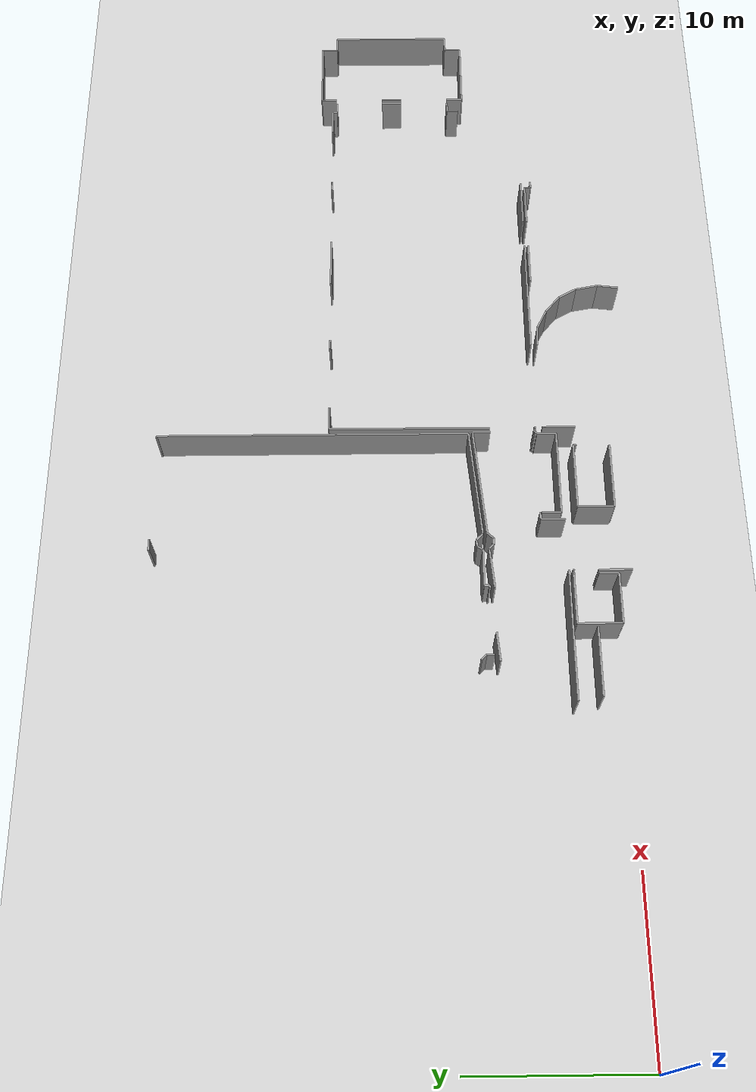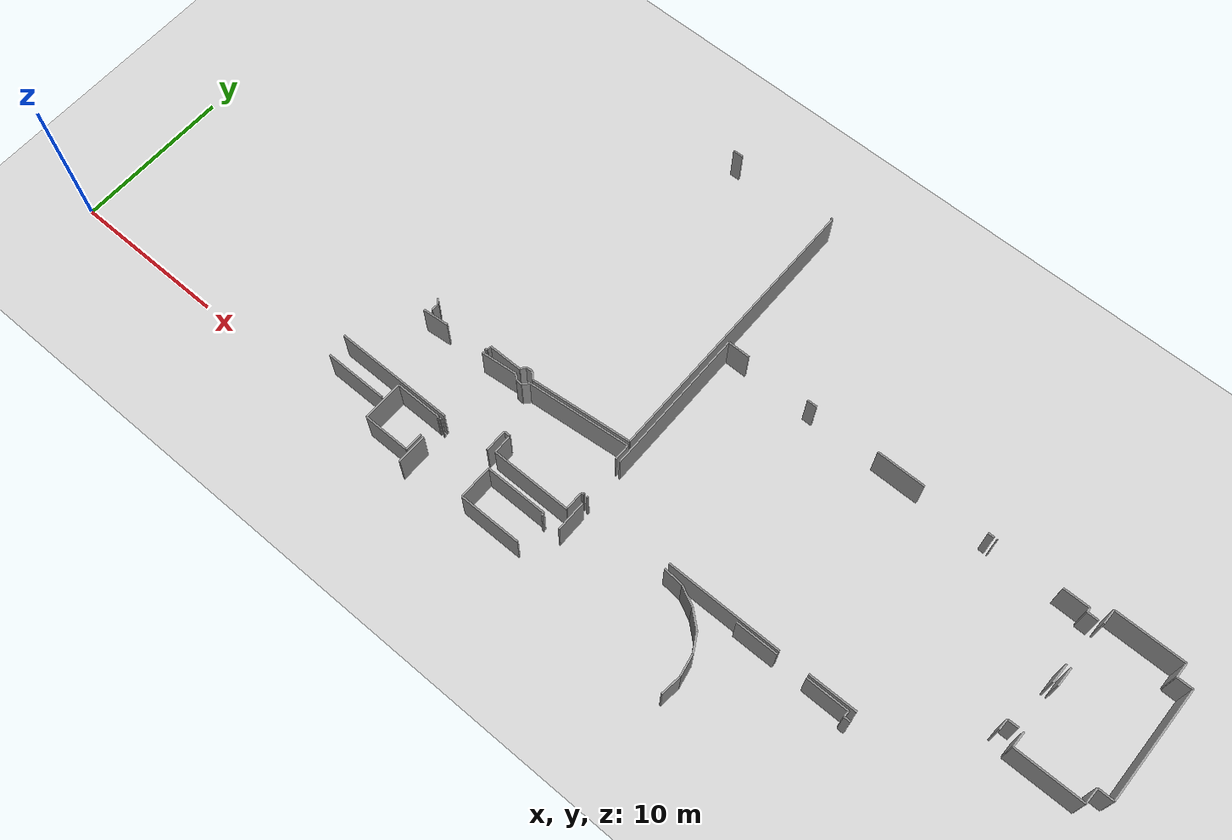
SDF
<sdf version="1.6">
 <world name="default">
  <model name="ground_plane">
   <static>1</static>
   <link name="link">
    <collision name="collision">
     <geometry><plane><normal>0 0 1</normal><size>100 100</size></plane></geometry>
     <surface><friction><ode><mu>100</mu><mu2>50</mu2></ode></friction></surface>
    </collision>
    <visual name="visual">
     <cast_shadows>0</cast_shadows>
     <geometry><plane><normal>0 0 1</normal><size>100 100</size></plane></geometry>
     <material>
      <script><uri>file://media/materials/scripts/gazebo.material</uri><name>Gazebo/Grey</name></script>
     </material>
    </visual>
   </link>
  </model>
  <model name="50041170">
   <static>1</static>
   <link name="Wall_83">
    <collision name="Wall_83_Collision">
     <geometry><box><size>2.32853490371 0.1 2.5</size></box></geometry>
     <pose>1.16426745185 0 1.25 0 0 0</pose>
    </collision>
    <visual name="Wall_83_Visual">
     <pose>1.16426745185 0 1.25 0 0 0</pose>
     <geometry><box><size>2.32853490371 0.1 2.5</size></box></geometry>
     <material>
      <script><uri>file://media/materials/scripts/gazebo.material</uri><name>Gazebo/Grey</name></script>
      <ambient>1 1 1 1</ambient>
     </material>
    </visual>
    <pose>91.6279394497 -19.618292025 0 0 0 0.0949439535834</pose>
   </link>
   <link name="Wall_84">
    <collision name="Wall_84_Collision">
     <geometry><box><size>0.390588830977 0.1 2.5</size></box></geometry>
     <pose>0.195294415488 0 1.25 0 0 0</pose>
    </collision>
    <visual name="Wall_84_Visual">
     <pose>0.195294415488 0 1.25 0 0 0</pose>
     <geometry><box><size>0.390588830977 0.1 2.5</size></box></geometry>
     <material>
      <script><uri>file://media/materials/scripts/gazebo.material</uri><name>Gazebo/Grey</name></script>
      <ambient>1 1 1 1</ambient>
     </material>
    </visual>
    <pose>93.9459871156 -19.3975437149 0 0 0 -0.745401106415</pose>
   </link>
   <link name="Wall_85">
    <collision name="Wall_85_Collision">
     <geometry><box><size>0.375396528231 0.1 2.5</size></box></geometry>
     <pose>0.187698264115 0 1.25 0 0 0</pose>
    </collision>
    <visual name="Wall_85_Visual">
     <pose>0.187698264115 0 1.25 0 0 0</pose>
     <geometry><box><size>0.375396528231 0.1 2.5</size></box></geometry>
     <material>
      <script><uri>file://media/materials/scripts/gazebo.material</uri><name>Gazebo/Grey</name></script>
      <ambient>1 1 1 1</ambient>
     </material>
    </visual>
    <pose>94.2329980007 -19.662467075 0 0 0 -0.0294231706984</pose>
   </link>
   <link name="Wall_86">
    <collision name="Wall_86_Collision">
     <geometry><box><size>0.476752711838 0.1 2.5</size></box></geometry>
     <pose>0.238376355919 0 1.25 0 0 0</pose>
    </collision>
    <visual name="Wall_86_Visual">
     <pose>0.238376355919 0 1.25 0 0 0</pose>
     <geometry><box><size>0.476752711838 0.1 2.5</size></box></geometry>
     <material>
      <script><uri>file://media/materials/scripts/gazebo.material</uri><name>Gazebo/Grey</name></script>
      <ambient>1 1 1 1</ambient>
     </material>
    </visual>
    <pose>94.608232046 -19.6735108375 0 0 0 0.834557394182</pose>
   </link>
   <link name="Wall_87">
    <collision name="Wall_87_Collision">
     <geometry><box><size>6.57582596534 0.1 2.5</size></box></geometry>
     <pose>3.28791298267 0 1.25 0 0 0</pose>
    </collision>
    <visual name="Wall_87_Visual">
     <pose>3.28791298267 0 1.25 0 0 0</pose>
     <geometry><box><size>6.57582596534 0.1 2.5</size></box></geometry>
     <material>
      <script><uri>file://media/materials/scripts/gazebo.material</uri><name>Gazebo/Grey</name></script>
      <ambient>1 1 1 1</ambient>
     </material>
    </visual>
    <pose>94.9283742185 -19.3202373774 0 0 0 0.0958366059863</pose>
   </link>
   <link name="Wall_88">
    <collision name="Wall_88_Collision">
     <geometry><box><size>1.04864967789 0.1 2.5</size></box></geometry>
     <pose>0.524324838945 0 1.25 0 0 0</pose>
    </collision>
    <visual name="Wall_88_Visual">
     <pose>0.524324838945 0 1.25 0 0 0</pose>
     <geometry><box><size>1.04864967789 0.1 2.5</size></box></geometry>
     <material>
      <script><uri>file://media/materials/scripts/gazebo.material</uri><name>Gazebo/Grey</name></script>
      <ambient>1 1 1 1</ambient>
     </material>
    </visual>
    <pose>101.474024944 -18.6909967948 0 0 0 -1.57079632679</pose>
   </link>
   <link name="Wall_89">
    <collision name="Wall_89_Collision">
     <geometry><box><size>0.105486972803 0.1 2.5</size></box></geometry>
     <pose>0.0527434864016 0 1.25 0 0 0</pose>
    </collision>
    <visual name="Wall_89_Visual">
     <pose>0.0527434864016 0 1.25 0 0 0</pose>
     <geometry><box><size>0.105486972803 0.1 2.5</size></box></geometry>
     <material>
      <script><uri>file://media/materials/scripts/gazebo.material</uri><name>Gazebo/Grey</name></script>
      <ambient>1 1 1 1</ambient>
     </material>
    </visual>
    <pose>101.474024944 -22.323633017 0 0 0 -1.57079632679</pose>
   </link>
   <link name="Wall_90">
    <collision name="Wall_90_Collision">
     <geometry><box><size>0.143441972644 0.1 2.5</size></box></geometry>
     <pose>0.0717209863222 0 1.25 0 0 0</pose>
    </collision>
    <visual name="Wall_90_Visual">
     <pose>0.0717209863222 0 1.25 0 0 0</pose>
     <geometry><box><size>0.143441972644 0.1 2.5</size></box></geometry>
     <material>
      <script><uri>file://media/materials/scripts/gazebo.material</uri><name>Gazebo/Grey</name></script>
      <ambient>1 1 1 1</ambient>
     </material>
    </visual>
    <pose>101.474024944 -22.4291199898 0 0 0 3.14159265359</pose>
   </link>
   <link name="Wall_91">
    <collision name="Wall_91_Collision">
     <geometry><box><size>0.408873091936 0.1 2.5</size></box></geometry>
     <pose>0.204436545968 0 1.25 0 0 0</pose>
    </collision>
    <visual name="Wall_91_Visual">
     <pose>0.204436545968 0 1.25 0 0 0</pose>
     <geometry><box><size>0.408873091936 0.1 2.5</size></box></geometry>
     <material>
      <script><uri>file://media/materials/scripts/gazebo.material</uri><name>Gazebo/Grey</name></script>
      <ambient>1 1 1 1</ambient>
     </material>
    </visual>
    <pose>96.1970105677 -22.4291199898 0 0 0 3.14159265359</pose>
   </link>
   <link name="Wall_92">
    <collision name="Wall_92_Collision">
     <geometry><box><size>1.42642251912 0.1 2.5</size></box></geometry>
     <pose>0.71321125956 0 1.25 0 0 0</pose>
    </collision>
    <visual name="Wall_92_Visual">
     <pose>0.71321125956 0 1.25 0 0 0</pose>
     <geometry><box><size>1.42642251912 0.1 2.5</size></box></geometry>
     <material>
      <script><uri>file://media/materials/scripts/gazebo.material</uri><name>Gazebo/Grey</name></script>
      <ambient>1 1 1 1</ambient>
     </material>
    </visual>
    <pose>95.7881374758 -22.4291199898 0 0 0 -1.57079632679</pose>
   </link>
   <link name="Wall_93">
    <collision name="Wall_93_Collision">
     <geometry><box><size>7.64951921551 0.1 2.5</size></box></geometry>
     <pose>3.82475960776 0 1.25 0 0 0</pose>
    </collision>
    <visual name="Wall_93_Visual">
     <pose>3.82475960776 0 1.25 0 0 0</pose>
     <geometry><box><size>7.64951921551 0.1 2.5</size></box></geometry>
     <material>
      <script><uri>file://media/materials/scripts/gazebo.material</uri><name>Gazebo/Grey</name></script>
      <ambient>1 1 1 1</ambient>
     </material>
    </visual>
    <pose>92.6324140776 -23.855542509 0 0 0 3.14159265359</pose>
   </link>
   <link name="Wall_157">
    <collision name="Wall_157_Collision">
     <geometry><box><size>6.5106853813 0.1 2.5</size></box></geometry>
     <pose>3.25534269065 0 1.25 0 0 0</pose>
    </collision>
    <visual name="Wall_157_Visual">
     <pose>3.25534269065 0 1.25 0 0 0</pose>
     <geometry><box><size>6.5106853813 0.1 2.5</size></box></geometry>
     <material>
      <script><uri>file://media/materials/scripts/gazebo.material</uri><name>Gazebo/Grey</name></script>
      <ambient>1 1 1 1</ambient>
     </material>
    </visual>
    <pose>101.381358891 -18.4570467456 0 0 0 -3.04736001651</pose>
   </link>
   <link name="Wall_158">
    <collision name="Wall_158_Collision">
     <geometry><box><size>0.542868434847 0.1 2.5</size></box></geometry>
     <pose>0.271434217424 0 1.25 0 0 0</pose>
    </collision>
    <visual name="Wall_158_Visual">
     <pose>0.271434217424 0 1.25 0 0 0</pose>
     <geometry><box><size>0.542868434847 0.1 2.5</size></box></geometry>
     <material>
      <script><uri>file://media/materials/scripts/gazebo.material</uri><name>Gazebo/Grey</name></script>
      <ambient>1 1 1 1</ambient>
     </material>
    </visual>
    <pose>94.8995588842 -19.0696582146 0 0 0 2.35619449019</pose>
   </link>
   <link name="Wall_159">
    <collision name="Wall_159_Collision">
     <geometry><box><size>0.404979340821 0.1 2.5</size></box></geometry>
     <pose>0.20248967041 0 1.25 0 0 0</pose>
    </collision>
    <visual name="Wall_159_Visual">
     <pose>0.20248967041 0 1.25 0 0 0</pose>
     <geometry><box><size>0.404979340821 0.1 2.5</size></box></geometry>
     <material>
      <script><uri>file://media/materials/scripts/gazebo.material</uri><name>Gazebo/Grey</name></script>
      <ambient>1 1 1 1</ambient>
     </material>
    </visual>
    <pose>94.5156929326 -18.685792263 0 0 0 -3.04678953566</pose>
   </link>
   <link name="Wall_160">
    <collision name="Wall_160_Collision">
     <geometry><box><size>0.375530750644 0.1 2.5</size></box></geometry>
     <pose>0.187765375322 0 1.25 0 0 0</pose>
    </collision>
    <visual name="Wall_160_Visual">
     <pose>0.187765375322 0 1.25 0 0 0</pose>
     <geometry><box><size>0.375530750644 0.1 2.5</size></box></geometry>
     <material>
      <script><uri>file://media/materials/scripts/gazebo.material</uri><name>Gazebo/Grey</name></script>
      <ambient>1 1 1 1</ambient>
     </material>
    </visual>
    <pose>94.1125321316 -18.7241280823 0 0 0 -2.13742184215</pose>
   </link>
   <link name="Wall_161">
    <collision name="Wall_161_Collision">
     <geometry><box><size>2.16929567412 0.1 2.5</size></box></geometry>
     <pose>1.08464783706 0 1.25 0 0 0</pose>
    </collision>
    <visual name="Wall_161_Visual">
     <pose>1.08464783706 0 1.25 0 0 0</pose>
     <geometry><box><size>2.16929567412 0.1 2.5</size></box></geometry>
     <material>
      <script><uri>file://media/materials/scripts/gazebo.material</uri><name>Gazebo/Grey</name></script>
      <ambient>1 1 1 1</ambient>
     </material>
    </visual>
    <pose>93.9109517311 -19.0409698201 0 0 0 3.13714537763</pose>
   </link>
   <link name="Wall_162">
    <collision name="Wall_162_Collision">
     <geometry><box><size>0.297546888388 0.1 2.5</size></box></geometry>
     <pose>0.148773444194 0 1.25 0 0 0</pose>
    </collision>
    <visual name="Wall_162_Visual">
     <pose>0.148773444194 0 1.25 0 0 0</pose>
     <geometry><box><size>0.297546888388 0.1 2.5</size></box></geometry>
     <material>
      <script><uri>file://media/materials/scripts/gazebo.material</uri><name>Gazebo/Grey</name></script>
      <ambient>1 1 1 1</ambient>
     </material>
    </visual>
    <pose>91.7416775094 -19.0313223954 0 0 0 -1.57079632679</pose>
   </link>
   <link name="Wall_163">
    <collision name="Wall_163_Collision">
     <geometry><box><size>0.154788550155 0.1 2.5</size></box></geometry>
     <pose>0.0773942750773 0 1.25 0 0 0</pose>
    </collision>
    <visual name="Wall_163_Visual">
     <pose>0.0773942750773 0 1.25 0 0 0</pose>
     <geometry><box><size>0.154788550155 0.1 2.5</size></box></geometry>
     <material>
      <script><uri>file://media/materials/scripts/gazebo.material</uri><name>Gazebo/Grey</name></script>
      <ambient>1 1 1 1</ambient>
     </material>
    </visual>
    <pose>91.7416775094 -19.3288692837 0 0 0 -3.01744109714</pose>
   </link>
   <link name="Wall_164">
    <collision name="Wall_164_Collision">
     <geometry><box><size>1.67399017035 0.1 2.5</size></box></geometry>
     <pose>0.836995085173 0 1.25 0 0 0</pose>
    </collision>
    <visual name="Wall_164_Visual">
     <pose>0.836995085173 0 1.25 0 0 0</pose>
     <geometry><box><size>1.67399017035 0.1 2.5</size></box></geometry>
     <material>
      <script><uri>file://media/materials/scripts/gazebo.material</uri><name>Gazebo/Grey</name></script>
      <ambient>1 1 1 1</ambient>
     </material>
    </visual>
    <pose>88.9567452636 -19.5962045 0 0 0 -3.04917522656</pose>
   </link>
   <link name="Wall_167">
    <collision name="Wall_167_Collision">
     <geometry><box><size>0.464110028397 0.1 2.5</size></box></geometry>
     <pose>0.232055014199 0 1.25 0 0 0</pose>
    </collision>
    <visual name="Wall_167_Visual">
     <pose>0.232055014199 0 1.25 0 0 0</pose>
     <geometry><box><size>0.464110028397 0.1 2.5</size></box></geometry>
     <material>
      <script><uri>file://media/materials/scripts/gazebo.material</uri><name>Gazebo/Grey</name></script>
      <ambient>1 1 1 1</ambient>
     </material>
    </visual>
    <pose>87.6542159881 -19.4636793501 0 0 0 1.52318720421</pose>
   </link>
   <link name="Wall_168">
    <collision name="Wall_168_Collision">
     <geometry><box><size>0.429393060097 0.1 2.5</size></box></geometry>
     <pose>0.214696530048 0 1.25 0 0 0</pose>
    </collision>
    <visual name="Wall_168_Visual">
     <pose>0.214696530048 0 1.25 0 0 0</pose>
     <geometry><box><size>0.429393060097 0.1 2.5</size></box></geometry>
     <material>
      <script><uri>file://media/materials/scripts/gazebo.material</uri><name>Gazebo/Grey</name></script>
      <ambient>1 1 1 1</ambient>
     </material>
    </visual>
    <pose>87.6763035131 -19.0000952048 0 0 0 2.37438190544</pose>
   </link>
   <link name="Wall_171">
    <collision name="Wall_171_Collision">
     <geometry><box><size>0.653105264828 0.1 2.5</size></box></geometry>
     <pose>0.326552632414 0 1.25 0 0 0</pose>
    </collision>
    <visual name="Wall_171_Visual">
     <pose>0.326552632414 0 1.25 0 0 0</pose>
     <geometry><box><size>0.653105264828 0.1 2.5</size></box></geometry>
     <material>
      <script><uri>file://media/materials/scripts/gazebo.material</uri><name>Gazebo/Grey</name></script>
      <ambient>1 1 1 1</ambient>
     </material>
    </visual>
    <pose>94.0691187204 -0.0 0 0 0 0.0</pose>
   </link>
   <link name="Wall_172">
    <collision name="Wall_172_Collision">
     <geometry><box><size>0.0987591634667 0.1 2.5</size></box></geometry>
     <pose>0.0493795817334 0 1.25 0 0 0</pose>
    </collision>
    <visual name="Wall_172_Visual">
     <pose>0.0493795817334 0 1.25 0 0 0</pose>
     <geometry><box><size>0.0987591634667 0.1 2.5</size></box></geometry>
     <material>
      <script><uri>file://media/materials/scripts/gazebo.material</uri><name>Gazebo/Grey</name></script>
      <ambient>1 1 1 1</ambient>
     </material>
    </visual>
    <pose>101.274856399 -0.0 0 0 0 0.0</pose>
   </link>
   <link name="Wall_173">
    <collision name="Wall_173_Collision">
     <geometry><box><size>18.4570483699 0.1 2.5</size></box></geometry>
     <pose>9.22852418493 0 1.25 0 0 0</pose>
    </collision>
    <visual name="Wall_173_Visual">
     <pose>9.22852418493 0 1.25 0 0 0</pose>
     <geometry><box><size>18.4570483699 0.1 2.5</size></box></geometry>
     <material>
      <script><uri>file://media/materials/scripts/gazebo.material</uri><name>Gazebo/Grey</name></script>
      <ambient>1 1 1 1</ambient>
     </material>
    </visual>
    <pose>101.373615563 -0.0 0 0 0 -1.57037679449</pose>
   </link>
   <link name="Wall_174">
    <collision name="Wall_174_Collision">
     <geometry><box><size>0.403668560185 0.1 2.5</size></box></geometry>
     <pose>0.201834280093 0 1.25 0 0 0</pose>
    </collision>
    <visual name="Wall_174_Visual">
     <pose>0.201834280093 0 1.25 0 0 0</pose>
     <geometry><box><size>0.403668560185 0.1 2.5</size></box></geometry>
     <material>
      <script><uri>file://media/materials/scripts/gazebo.material</uri><name>Gazebo/Grey</name></script>
      <ambient>1 1 1 1</ambient>
     </material>
    </visual>
    <pose>119.692424868 -10.1984703754 0 0 0 3.14159265359</pose>
   </link>
   <link name="Wall_175">
    <collision name="Wall_175_Collision">
     <geometry><box><size>3.1112944686 0.1 2.5</size></box></geometry>
     <pose>1.5556472343 0 1.25 0 0 0</pose>
    </collision>
    <visual name="Wall_175_Visual">
     <pose>1.5556472343 0 1.25 0 0 0</pose>
     <geometry><box><size>3.1112944686 0.1 2.5</size></box></geometry>
     <material>
      <script><uri>file://media/materials/scripts/gazebo.material</uri><name>Gazebo/Grey</name></script>
      <ambient>1 1 1 1</ambient>
     </material>
    </visual>
    <pose>115.174637428 -10.1984703754 0 0 0 3.14159265359</pose>
   </link>
   <link name="Wall_176">
    <collision name="Wall_176_Collision">
     <geometry><box><size>0.637364729777 0.1 2.5</size></box></geometry>
     <pose>0.318682364888 0 1.25 0 0 0</pose>
    </collision>
    <visual name="Wall_176_Visual">
     <pose>0.318682364888 0 1.25 0 0 0</pose>
     <geometry><box><size>0.637364729777 0.1 2.5</size></box></geometry>
     <material>
      <script><uri>file://media/materials/scripts/gazebo.material</uri><name>Gazebo/Grey</name></script>
      <ambient>1 1 1 1</ambient>
     </material>
    </visual>
    <pose>107.916346673 -10.1984703754 0 0 0 3.14159265359</pose>
   </link>
   <link name="Wall_177">
    <collision name="Wall_177_Collision">
     <geometry><box><size>1.4389895592 0.1 2.5</size></box></geometry>
     <pose>0.719494779601 0 1.25 0 0 0</pose>
    </collision>
    <visual name="Wall_177_Visual">
     <pose>0.719494779601 0 1.25 0 0 0</pose>
     <geometry><box><size>1.4389895592 0.1 2.5</size></box></geometry>
     <material>
      <script><uri>file://media/materials/scripts/gazebo.material</uri><name>Gazebo/Grey</name></script>
      <ambient>1 1 1 1</ambient>
     </material>
    </visual>
    <pose>103.183015455 -10.1984703754 0 0 0 3.14159265359</pose>
   </link>
   <link name="Wall_178">
    <collision name="Wall_178_Collision">
     <geometry><box><size>9.5239122846 0.1 2.5</size></box></geometry>
     <pose>4.7619561423 0 1.25 0 0 0</pose>
    </collision>
    <visual name="Wall_178_Visual">
     <pose>4.7619561423 0 1.25 0 0 0</pose>
     <geometry><box><size>9.5239122846 0.1 2.5</size></box></geometry>
     <material>
      <script><uri>file://media/materials/scripts/gazebo.material</uri><name>Gazebo/Grey</name></script>
      <ambient>1 1 1 1</ambient>
     </material>
    </visual>
    <pose>101.744025896 -10.1984703754 0 0 0 -1.57079632679</pose>
   </link>
   <link name="Wall_179">
    <collision name="Wall_179_Collision">
     <geometry><box><size>0.114372758719 0.1 2.5</size></box></geometry>
     <pose>0.0571863793596 0 1.25 0 0 0</pose>
    </collision>
    <visual name="Wall_179_Visual">
     <pose>0.0571863793596 0 1.25 0 0 0</pose>
     <geometry><box><size>0.114372758719 0.1 2.5</size></box></geometry>
     <material>
      <script><uri>file://media/materials/scripts/gazebo.material</uri><name>Gazebo/Grey</name></script>
      <ambient>1 1 1 1</ambient>
     </material>
    </visual>
    <pose>101.744025896 -22.3557487861 0 0 0 -1.57079632679</pose>
   </link>
   <link name="Wall_180">
    <collision name="Wall_180_Collision">
     <geometry><box><size>7.31401732728 0.1 2.5</size></box></geometry>
     <pose>3.65700866364 0 1.25 0 0 0</pose>
    </collision>
    <visual name="Wall_180_Visual">
     <pose>3.65700866364 0 1.25 0 0 0</pose>
     <geometry><box><size>7.31401732728 0.1 2.5</size></box></geometry>
     <material>
      <script><uri>file://media/materials/scripts/gazebo.material</uri><name>Gazebo/Grey</name></script>
      <ambient>1 1 1 1</ambient>
     </material>
    </visual>
    <pose>107.454412745 -22.4701215449 0 0 0 0.0</pose>
   </link>
   <link name="Wall_181">
    <collision name="Wall_181_Collision">
     <geometry><box><size>3.04028567186 0.1 2.5</size></box></geometry>
     <pose>1.52014283593 0 1.25 0 0 0</pose>
    </collision>
    <visual name="Wall_181_Visual">
     <pose>1.52014283593 0 1.25 0 0 0</pose>
     <geometry><box><size>3.04028567186 0.1 2.5</size></box></geometry>
     <material>
      <script><uri>file://media/materials/scripts/gazebo.material</uri><name>Gazebo/Grey</name></script>
      <ambient>1 1 1 1</ambient>
     </material>
    </visual>
    <pose>116.652216686 -22.4701215449 0 0 0 0.00713975341769</pose>
   </link>
   <link name="Wall_182">
    <collision name="Wall_182_Collision">
     <geometry><box><size>0.0774332772682 0.1 2.5</size></box></geometry>
     <pose>0.0387166386341 0 1.25 0 0 0</pose>
    </collision>
    <visual name="Wall_182_Visual">
     <pose>0.0387166386341 0 1.25 0 0 0</pose>
     <geometry><box><size>0.0774332772682 0.1 2.5</size></box></geometry>
     <material>
      <script><uri>file://media/materials/scripts/gazebo.material</uri><name>Gazebo/Grey</name></script>
      <ambient>1 1 1 1</ambient>
     </material>
    </visual>
    <pose>119.834597442 -10.1952968805 0 0 0 0.0</pose>
   </link>
   <link name="Wall_183">
    <collision name="Wall_183_Collision">
     <geometry><box><size>1.67941353813 0.1 2.5</size></box></geometry>
     <pose>0.839706769065 0 1.25 0 0 0</pose>
    </collision>
    <visual name="Wall_183_Visual">
     <pose>0.839706769065 0 1.25 0 0 0</pose>
     <geometry><box><size>1.67941353813 0.1 2.5</size></box></geometry>
     <material>
      <script><uri>file://media/materials/scripts/gazebo.material</uri><name>Gazebo/Grey</name></script>
      <ambient>1 1 1 1</ambient>
     </material>
    </visual>
    <pose>124.012186221 -10.1952968805 0 0 0 0.0</pose>
   </link>
   <link name="Wall_184">
    <collision name="Wall_184_Collision">
     <geometry><box><size>0.283837390118 0.1 2.5</size></box></geometry>
     <pose>0.141918695059 0 1.25 0 0 0</pose>
    </collision>
    <visual name="Wall_184_Visual">
     <pose>0.141918695059 0 1.25 0 0 0</pose>
     <geometry><box><size>0.283837390118 0.1 2.5</size></box></geometry>
     <material>
      <script><uri>file://media/materials/scripts/gazebo.material</uri><name>Gazebo/Grey</name></script>
      <ambient>1 1 1 1</ambient>
     </material>
    </visual>
    <pose>125.691599759 -10.1952968805 0 0 0 -1.57079632679</pose>
   </link>
   <link name="Wall_185">
    <collision name="Wall_185_Collision">
     <geometry><box><size>0.721018057186 0.1 2.5</size></box></geometry>
     <pose>0.360509028593 0 1.25 0 0 0</pose>
    </collision>
    <visual name="Wall_185_Visual">
     <pose>0.360509028593 0 1.25 0 0 0</pose>
     <geometry><box><size>0.721018057186 0.1 2.5</size></box></geometry>
     <material>
      <script><uri>file://media/materials/scripts/gazebo.material</uri><name>Gazebo/Grey</name></script>
      <ambient>1 1 1 1</ambient>
     </material>
    </visual>
    <pose>125.691599759 -10.4791342706 0 0 0 0.0</pose>
   </link>
   <link name="Wall_186">
    <collision name="Wall_186_Collision">
     <geometry><box><size>1.26051220209 0.1 2.5</size></box></geometry>
     <pose>0.630256101044 0 1.25 0 0 0</pose>
    </collision>
    <visual name="Wall_186_Visual">
     <pose>0.630256101044 0 1.25 0 0 0</pose>
     <geometry><box><size>1.26051220209 0.1 2.5</size></box></geometry>
     <material>
      <script><uri>file://media/materials/scripts/gazebo.material</uri><name>Gazebo/Grey</name></script>
      <ambient>1 1 1 1</ambient>
     </material>
    </visual>
    <pose>126.412617816 -13.5141379201 0 0 0 -1.57079632679</pose>
   </link>
   <link name="Wall_187">
    <collision name="Wall_187_Collision">
     <geometry><box><size>0.709593475294 0.1 2.5</size></box></geometry>
     <pose>0.354796737647 0 1.25 0 0 0</pose>
    </collision>
    <visual name="Wall_187_Visual">
     <pose>0.354796737647 0 1.25 0 0 0</pose>
     <geometry><box><size>0.709593475294 0.1 2.5</size></box></geometry>
     <material>
      <script><uri>file://media/materials/scripts/gazebo.material</uri><name>Gazebo/Grey</name></script>
      <ambient>1 1 1 1</ambient>
     </material>
    </visual>
    <pose>126.412617816 -17.8304718987 0 0 0 3.14159265359</pose>
   </link>
   <link name="Wall_188">
    <collision name="Wall_188_Collision">
     <geometry><box><size>0.708673882969 0.1 2.5</size></box></geometry>
     <pose>0.354336941485 0 1.25 0 0 0</pose>
    </collision>
    <visual name="Wall_188_Visual">
     <pose>0.354336941485 0 1.25 0 0 0</pose>
     <geometry><box><size>0.708673882969 0.1 2.5</size></box></geometry>
     <material>
      <script><uri>file://media/materials/scripts/gazebo.material</uri><name>Gazebo/Grey</name></script>
      <ambient>1 1 1 1</ambient>
     </material>
    </visual>
    <pose>125.703024341 -17.8304718987 0 0 0 -1.59587617727</pose>
   </link>
   <link name="Wall_189">
    <collision name="Wall_189_Collision">
     <geometry><box><size>4.33372473105 0.1 2.5</size></box></geometry>
     <pose>2.16686236552 0 1.25 0 0 0</pose>
    </collision>
    <visual name="Wall_189_Visual">
     <pose>2.16686236552 0 1.25 0 0 0</pose>
     <geometry><box><size>4.33372473105 0.1 2.5</size></box></geometry>
     <material>
      <script><uri>file://media/materials/scripts/gazebo.material</uri><name>Gazebo/Grey</name></script>
      <ambient>1 1 1 1</ambient>
     </material>
    </visual>
    <pose>131.038304084 -18.8247913427 0 0 0 3.14159265359</pose>
   </link>
   <link name="Wall_190">
    <collision name="Wall_190_Collision">
     <geometry><box><size>0.986956935673 0.1 2.5</size></box></geometry>
     <pose>0.493478467837 0 1.25 0 0 0</pose>
    </collision>
    <visual name="Wall_190_Visual">
     <pose>0.493478467837 0 1.25 0 0 0</pose>
     <geometry><box><size>0.986956935673 0.1 2.5</size></box></geometry>
     <material>
      <script><uri>file://media/materials/scripts/gazebo.material</uri><name>Gazebo/Grey</name></script>
      <ambient>1 1 1 1</ambient>
     </material>
    </visual>
    <pose>126.704579353 -18.8247913427 0 0 0 1.57079632679</pose>
   </link>
   <link name="Wall_191">
    <collision name="Wall_191_Collision">
     <geometry><box><size>1.24718352321 0.1 2.5</size></box></geometry>
     <pose>0.623591761607 0 1.25 0 0 0</pose>
    </collision>
    <visual name="Wall_191_Visual">
     <pose>0.623591761607 0 1.25 0 0 0</pose>
     <geometry><box><size>1.24718352321 0.1 2.5</size></box></geometry>
     <material>
      <script><uri>file://media/materials/scripts/gazebo.material</uri><name>Gazebo/Grey</name></script>
      <ambient>1 1 1 1</ambient>
     </material>
    </visual>
    <pose>126.704579353 -14.7614483831 0 0 0 1.57079632679</pose>
   </link>
   <link name="Wall_192">
    <collision name="Wall_192_Collision">
     <geometry><box><size>0.962584494304 0.1 2.5</size></box></geometry>
     <pose>0.481292247152 0 1.25 0 0 0</pose>
    </collision>
    <visual name="Wall_192_Visual">
     <pose>0.481292247152 0 1.25 0 0 0</pose>
     <geometry><box><size>0.962584494304 0.1 2.5</size></box></geometry>
     <material>
      <script><uri>file://media/materials/scripts/gazebo.material</uri><name>Gazebo/Grey</name></script>
      <ambient>1 1 1 1</ambient>
     </material>
    </visual>
    <pose>126.704579353 -10.4454952239 0 0 0 1.57079632679</pose>
   </link>
   <link name="Wall_193">
    <collision name="Wall_193_Collision">
     <geometry><box><size>4.37307606867 0.1 2.5</size></box></geometry>
     <pose>2.18653803434 0 1.25 0 0 0</pose>
    </collision>
    <visual name="Wall_193_Visual">
     <pose>2.18653803434 0 1.25 0 0 0</pose>
     <geometry><box><size>4.37307606867 0.1 2.5</size></box></geometry>
     <material>
      <script><uri>file://media/materials/scripts/gazebo.material</uri><name>Gazebo/Grey</name></script>
      <ambient>1 1 1 1</ambient>
     </material>
    </visual>
    <pose>126.704579353 -9.48291072959 0 0 0 0.0</pose>
   </link>
   <link name="Wall_194">
    <collision name="Wall_194_Collision">
     <geometry><box><size>0.959918758529 0.1 2.5</size></box></geometry>
     <pose>0.479959379264 0 1.25 0 0 0</pose>
    </collision>
    <visual name="Wall_194_Visual">
     <pose>0.479959379264 0 1.25 0 0 0</pose>
     <geometry><box><size>0.959918758529 0.1 2.5</size></box></geometry>
     <material>
      <script><uri>file://media/materials/scripts/gazebo.material</uri><name>Gazebo/Grey</name></script>
      <ambient>1 1 1 1</ambient>
     </material>
    </visual>
    <pose>131.077655422 -9.48291072959 0 0 0 -1.57079632679</pose>
   </link>
   <link name="Wall_195">
    <collision name="Wall_195_Collision">
     <geometry><box><size>0.976167052775 0.1 2.5</size></box></geometry>
     <pose>0.488083526388 0 1.25 0 0 0</pose>
    </collision>
    <visual name="Wall_195_Visual">
     <pose>0.488083526388 0 1.25 0 0 0</pose>
     <geometry><box><size>0.976167052775 0.1 2.5</size></box></geometry>
     <material>
      <script><uri>file://media/materials/scripts/gazebo.material</uri><name>Gazebo/Grey</name></script>
      <ambient>1 1 1 1</ambient>
     </material>
    </visual>
    <pose>131.077655422 -10.4428294881 0 0 0 0.0</pose>
   </link>
   <link name="Wall_196">
    <collision name="Wall_196_Collision">
     <geometry><box><size>7.36987083875 0.1 2.5</size></box></geometry>
     <pose>3.68493541938 0 1.25 0 0 0</pose>
    </collision>
    <visual name="Wall_196_Visual">
     <pose>3.68493541938 0 1.25 0 0 0</pose>
     <geometry><box><size>7.36987083875 0.1 2.5</size></box></geometry>
     <material>
      <script><uri>file://media/materials/scripts/gazebo.material</uri><name>Gazebo/Grey</name></script>
      <ambient>1 1 1 1</ambient>
     </material>
    </visual>
    <pose>132.053822475 -10.4428294881 0 0 0 -1.57079632679</pose>
   </link>
   <link name="Wall_197">
    <collision name="Wall_197_Collision">
     <geometry><box><size>0.993938624607 0.1 2.5</size></box></geometry>
     <pose>0.496969312304 0 1.25 0 0 0</pose>
    </collision>
    <visual name="Wall_197_Visual">
     <pose>0.496969312304 0 1.25 0 0 0</pose>
     <geometry><box><size>0.993938624607 0.1 2.5</size></box></geometry>
     <material>
      <script><uri>file://media/materials/scripts/gazebo.material</uri><name>Gazebo/Grey</name></script>
      <ambient>1 1 1 1</ambient>
     </material>
    </visual>
    <pose>132.053822475 -17.8127003269 0 0 0 3.14159265359</pose>
   </link>
   <link name="Wall_198">
    <collision name="Wall_198_Collision">
     <geometry><box><size>1.01232105116 0.1 2.5</size></box></geometry>
     <pose>0.506160525581 0 1.25 0 0 0</pose>
    </collision>
    <visual name="Wall_198_Visual">
     <pose>0.506160525581 0 1.25 0 0 0</pose>
     <geometry><box><size>1.01232105116 0.1 2.5</size></box></geometry>
     <material>
      <script><uri>file://media/materials/scripts/gazebo.material</uri><name>Gazebo/Grey</name></script>
      <ambient>1 1 1 1</ambient>
     </material>
    </visual>
    <pose>131.05988385 -17.8127003269 0 0 0 -1.59211505812</pose>
   </link>
   <link name="Wall_200">
    <collision name="Wall_200_Collision">
     <geometry><box><size>2.66319697883 0.1 2.5</size></box></geometry>
     <pose>1.33159848942 0 1.25 0 0 0</pose>
    </collision>
    <visual name="Wall_200_Visual">
     <pose>1.33159848942 0 1.25 0 0 0</pose>
     <geometry><box><size>2.66319697883 0.1 2.5</size></box></geometry>
     <material>
      <script><uri>file://media/materials/scripts/gazebo.material</uri><name>Gazebo/Grey</name></script>
      <ambient>1 1 1 1</ambient>
     </material>
    </visual>
    <pose>112.129351655 -22.687061661 0 0 0 0.0</pose>
   </link>
   <link name="Wall_201">
    <collision name="Wall_201_Collision">
     <geometry><box><size>2.6670051728 0.1 2.5</size></box></geometry>
     <pose>1.3335025864 0 1.25 0 0 0</pose>
    </collision>
    <visual name="Wall_201_Visual">
     <pose>1.3335025864 0 1.25 0 0 0</pose>
     <geometry><box><size>2.6670051728 0.1 2.5</size></box></geometry>
     <material>
      <script><uri>file://media/materials/scripts/gazebo.material</uri><name>Gazebo/Grey</name></script>
      <ambient>1 1 1 1</ambient>
     </material>
    </visual>
    <pose>116.671257656 -22.687061661 0 0 0 0.0</pose>
   </link>
   <link name="Wall_202">
    <collision name="Wall_202_Collision">
     <geometry><box><size>0.376376503443 0.1 2.5</size></box></geometry>
     <pose>0.188188251722 0 1.25 0 0 0</pose>
    </collision>
    <visual name="Wall_202_Visual">
     <pose>0.188188251722 0 1.25 0 0 0</pose>
     <geometry><box><size>0.376376503443 0.1 2.5</size></box></geometry>
     <material>
      <script><uri>file://media/materials/scripts/gazebo.material</uri><name>Gazebo/Grey</name></script>
      <ambient>1 1 1 1</ambient>
     </material>
    </visual>
    <pose>119.338262829 -22.687061661 0 0 0 -1.57079632679</pose>
   </link>
   <link name="Wall_203">
    <collision name="Wall_203_Collision">
     <geometry><box><size>0.421440132017 0.1 2.5</size></box></geometry>
     <pose>0.210720066009 0 1.25 0 0 0</pose>
    </collision>
    <visual name="Wall_203_Visual">
     <pose>0.210720066009 0 1.25 0 0 0</pose>
     <geometry><box><size>0.421440132017 0.1 2.5</size></box></geometry>
     <material>
      <script><uri>file://media/materials/scripts/gazebo.material</uri><name>Gazebo/Grey</name></script>
      <ambient>1 1 1 1</ambient>
     </material>
    </visual>
    <pose>119.338262829 -23.0634381645 0 0 0 0.0</pose>
   </link>
   <link name="Wall_207">
    <collision name="Wall_207_Collision">
     <geometry><box><size>1.95246104535 0.1 2.5</size></box></geometry>
     <pose>0.976230522675 0 1.25 0 0 0</pose>
    </collision>
    <visual name="Wall_207_Visual">
     <pose>0.976230522675 0 1.25 0 0 0</pose>
     <geometry><box><size>1.95246104535 0.1 2.5</size></box></geometry>
     <material>
      <script><uri>file://media/materials/scripts/gazebo.material</uri><name>Gazebo/Grey</name></script>
      <ambient>1 1 1 1</ambient>
     </material>
    </visual>
    <pose>101.764209324 -24.7980705151 0 0 0 1.57079632679</pose>
   </link>
   <link name="Wall_208">
    <collision name="Wall_208_Collision">
     <geometry><box><size>1.27187879195 0.1 2.5</size></box></geometry>
     <pose>0.635939395973 0 1.25 0 0 0</pose>
    </collision>
    <visual name="Wall_208_Visual">
     <pose>0.635939395973 0 1.25 0 0 0</pose>
     <geometry><box><size>1.27187879195 0.1 2.5</size></box></geometry>
     <material>
      <script><uri>file://media/materials/scripts/gazebo.material</uri><name>Gazebo/Grey</name></script>
      <ambient>1 1 1 1</ambient>
     </material>
    </visual>
    <pose>107.44476532 -22.8456094697 0 0 0 -0.0877412823261</pose>
   </link>
   <link name="Wall_209">
    <collision name="Wall_209_Collision">
     <geometry><box><size>1.29644548704 0.1 2.5</size></box></geometry>
     <pose>0.648222743522 0 1.25 0 0 0</pose>
    </collision>
    <visual name="Wall_209_Visual">
     <pose>0.648222743522 0 1.25 0 0 0</pose>
     <geometry><box><size>1.29644548704 0.1 2.5</size></box></geometry>
     <material>
      <script><uri>file://media/materials/scripts/gazebo.material</uri><name>Gazebo/Grey</name></script>
      <ambient>1 1 1 1</ambient>
     </material>
    </visual>
    <pose>108.711751452 -22.9570626131 0 0 0 -0.460319688546</pose>
   </link>
   <link name="Wall_210">
    <collision name="Wall_210_Collision">
     <geometry><box><size>1.32644896499 0.1 2.5</size></box></geometry>
     <pose>0.663224482493 0 1.25 0 0 0</pose>
    </collision>
    <visual name="Wall_210_Visual">
     <pose>0.663224482493 0 1.25 0 0 0</pose>
     <geometry><box><size>1.32644896499 0.1 2.5</size></box></geometry>
     <material>
      <script><uri>file://media/materials/scripts/gazebo.material</uri><name>Gazebo/Grey</name></script>
      <ambient>1 1 1 1</ambient>
     </material>
    </visual>
    <pose>109.873250611 -23.5329884802 0 0 0 -0.718829999622</pose>
   </link>
   <link name="Wall_211">
    <collision name="Wall_211_Collision">
     <geometry><box><size>1.2203384676 0.1 2.5</size></box></geometry>
     <pose>0.610169233802 0 1.25 0 0 0</pose>
    </collision>
    <visual name="Wall_211_Visual">
     <pose>0.610169233802 0 1.25 0 0 0</pose>
     <geometry><box><size>1.2203384676 0.1 2.5</size></box></geometry>
     <material>
      <script><uri>file://media/materials/scripts/gazebo.material</uri><name>Gazebo/Grey</name></script>
      <ambient>1 1 1 1</ambient>
     </material>
    </visual>
    <pose>110.871505189 -24.4064612358 0 0 0 -1.06140436431</pose>
   </link>
   <link name="Wall_212">
    <collision name="Wall_212_Collision">
     <geometry><box><size>1.38549827264 0.1 2.5</size></box></geometry>
     <pose>0.692749136319 0 1.25 0 0 0</pose>
    </collision>
    <visual name="Wall_212_Visual">
     <pose>0.692749136319 0 1.25 0 0 0</pose>
     <geometry><box><size>1.38549827264 0.1 2.5</size></box></geometry>
     <material>
      <script><uri>file://media/materials/scripts/gazebo.material</uri><name>Gazebo/Grey</name></script>
      <ambient>1 1 1 1</ambient>
     </material>
    </visual>
    <pose>111.466598965 -25.4718669671 0 0 0 -1.39014793415</pose>
   </link>
   <link name="Wall_213">
    <collision name="Wall_213_Collision">
     <geometry><box><size>1.30487299236 0.1 2.5</size></box></geometry>
     <pose>0.65243649618 0 1.25 0 0 0</pose>
    </collision>
    <visual name="Wall_213_Visual">
     <pose>0.65243649618 0 1.25 0 0 0</pose>
     <geometry><box><size>1.30487299236 0.1 2.5</size></box></geometry>
     <material>
      <script><uri>file://media/materials/scripts/gazebo.material</uri><name>Gazebo/Grey</name></script>
      <ambient>1 1 1 1</ambient>
     </material>
    </visual>
    <pose>111.715527911 -26.8348195868 0 0 0 -1.68878028994</pose>
   </link>
   <link name="Wall_219">
    <collision name="Wall_219_Collision">
     <geometry><box><size>3.98502110374 0.1 2.5</size></box></geometry>
     <pose>1.99251055187 0 1.25 0 0 0</pose>
    </collision>
    <visual name="Wall_219_Visual">
     <pose>1.99251055187 0 1.25 0 0 0</pose>
     <geometry><box><size>3.98502110374 0.1 2.5</size></box></geometry>
     <material>
      <script><uri>file://media/materials/scripts/gazebo.material</uri><name>Gazebo/Grey</name></script>
      <ambient>1 1 1 1</ambient>
     </material>
    </visual>
    <pose>100.562724128 -26.7358065437 0 0 0 3.14159265359</pose>
   </link>
   <link name="Wall_220">
    <collision name="Wall_220_Collision">
     <geometry><box><size>2.13639681381 0.1 2.5</size></box></geometry>
     <pose>1.06819840691 0 1.25 0 0 0</pose>
    </collision>
    <visual name="Wall_220_Visual">
     <pose>1.06819840691 0 1.25 0 0 0</pose>
     <geometry><box><size>2.13639681381 0.1 2.5</size></box></geometry>
     <material>
      <script><uri>file://media/materials/scripts/gazebo.material</uri><name>Gazebo/Grey</name></script>
      <ambient>1 1 1 1</ambient>
     </material>
    </visual>
    <pose>96.5777030243 -26.7358065437 0 0 0 1.57079632679</pose>
   </link>
   <link name="Wall_221">
    <collision name="Wall_221_Collision">
     <geometry><box><size>3.9681381105 0.1 2.5</size></box></geometry>
     <pose>1.98406905525 0 1.25 0 0 0</pose>
    </collision>
    <visual name="Wall_221_Visual">
     <pose>1.98406905525 0 1.25 0 0 0</pose>
     <geometry><box><size>3.9681381105 0.1 2.5</size></box></geometry>
     <material>
      <script><uri>file://media/materials/scripts/gazebo.material</uri><name>Gazebo/Grey</name></script>
      <ambient>1 1 1 1</ambient>
     </material>
    </visual>
    <pose>96.5777030243 -24.5994097299 0 0 0 0.0</pose>
   </link>
   <link name="Wall_222">
    <collision name="Wall_222_Collision">
     <geometry><box><size>0.191788939098 0.1 2.5</size></box></geometry>
     <pose>0.0958944695488 0 1.25 0 0 0</pose>
    </collision>
    <visual name="Wall_222_Visual">
     <pose>0.0958944695488 0 1.25 0 0 0</pose>
     <geometry><box><size>0.191788939098 0.1 2.5</size></box></geometry>
     <material>
      <script><uri>file://media/materials/scripts/gazebo.material</uri><name>Gazebo/Grey</name></script>
      <ambient>1 1 1 1</ambient>
     </material>
    </visual>
    <pose>100.545841135 -24.5994097299 0 0 0 -1.4826532128</pose>
   </link>
   <link name="Wall_223">
    <collision name="Wall_223_Collision">
     <geometry><box><size>5.12557519596 0.1 2.5</size></box></geometry>
     <pose>2.56278759798 0 1.25 0 0 0</pose>
    </collision>
    <visual name="Wall_223_Visual">
     <pose>2.56278759798 0 1.25 0 0 0</pose>
     <geometry><box><size>5.12557519596 0.1 2.5</size></box></geometry>
     <material>
      <script><uri>file://media/materials/scripts/gazebo.material</uri><name>Gazebo/Grey</name></script>
      <ambient>1 1 1 1</ambient>
     </material>
    </visual>
    <pose>101.330582971 -23.6412681286 0 0 0 3.14159265359</pose>
   </link>
   <link name="Wall_224">
    <collision name="Wall_224_Collision">
     <geometry><box><size>1.14487004538 0.1 2.5</size></box></geometry>
     <pose>0.57243502269 0 1.25 0 0 0</pose>
    </collision>
    <visual name="Wall_224_Visual">
     <pose>0.57243502269 0 1.25 0 0 0</pose>
     <geometry><box><size>1.14487004538 0.1 2.5</size></box></geometry>
     <material>
      <script><uri>file://media/materials/scripts/gazebo.material</uri><name>Gazebo/Grey</name></script>
      <ambient>1 1 1 1</ambient>
     </material>
    </visual>
    <pose>96.2050077751 -23.6412681286 0 0 0 1.57079632679</pose>
   </link>
   <link name="Wall_225">
    <collision name="Wall_225_Collision">
     <geometry><box><size>1.14490354974 0.1 2.5</size></box></geometry>
     <pose>0.572451774868 0 1.25 0 0 0</pose>
    </collision>
    <visual name="Wall_225_Visual">
     <pose>0.572451774868 0 1.25 0 0 0</pose>
     <geometry><box><size>1.14490354974 0.1 2.5</size></box></geometry>
     <material>
      <script><uri>file://media/materials/scripts/gazebo.material</uri><name>Gazebo/Grey</name></script>
      <ambient>1 1 1 1</ambient>
     </material>
    </visual>
    <pose>101.321824125 -22.4963980832 0 0 0 -1.56314596047</pose>
   </link>
   <link name="Wall_426">
    <collision name="Wall_426_Collision">
     <geometry><box><size>4.00888578592 0.1 2.5</size></box></geometry>
     <pose>2.00444289296 0 1.25 0 0 0</pose>
    </collision>
    <visual name="Wall_426_Visual">
     <pose>2.00444289296 0 1.25 0 0 0</pose>
     <geometry><box><size>4.00888578592 0.1 2.5</size></box></geometry>
     <material>
      <script><uri>file://media/materials/scripts/gazebo.material</uri><name>Gazebo/Grey</name></script>
      <ambient>1 1 1 1</ambient>
     </material>
    </visual>
    <pose>89.2332201453 -25.2483259814 0 0 0 3.14159265359</pose>
   </link>
   <link name="Wall_431">
    <collision name="Wall_431_Collision">
     <geometry><box><size>0.102313477833 0.1 2.5</size></box></geometry>
     <pose>0.0511567389166 0 1.25 0 0 0</pose>
    </collision>
    <visual name="Wall_431_Visual">
     <pose>0.0511567389166 0 1.25 0 0 0</pose>
     <geometry><box><size>0.102313477833 0.1 2.5</size></box></geometry>
     <material>
      <script><uri>file://media/materials/scripts/gazebo.material</uri><name>Gazebo/Grey</name></script>
      <ambient>1 1 1 1</ambient>
     </material>
    </visual>
    <pose>92.6294944623 -24.0642315382 0 0 0 -1.57079632679</pose>
   </link>
   <link name="Wall_432">
    <collision name="Wall_432_Collision">
     <geometry><box><size>1.93062739996 0.1 2.5</size></box></geometry>
     <pose>0.965313699978 0 1.25 0 0 0</pose>
    </collision>
    <visual name="Wall_432_Visual">
     <pose>0.965313699978 0 1.25 0 0 0</pose>
     <geometry><box><size>1.93062739996 0.1 2.5</size></box></geometry>
     <material>
      <script><uri>file://media/materials/scripts/gazebo.material</uri><name>Gazebo/Grey</name></script>
      <ambient>1 1 1 1</ambient>
     </material>
    </visual>
    <pose>92.6294944623 -25.5165497763 0 0 0 -1.57079632679</pose>
   </link>
   <link name="Wall_434">
    <collision name="Wall_434_Collision">
     <geometry><box><size>2.97978483704 0.1 2.5</size></box></geometry>
     <pose>1.48989241852 0 1.25 0 0 0</pose>
    </collision>
    <visual name="Wall_434_Visual">
     <pose>1.48989241852 0 1.25 0 0 0</pose>
     <geometry><box><size>2.97978483704 0.1 2.5</size></box></geometry>
     <material>
      <script><uri>file://media/materials/scripts/gazebo.material</uri><name>Gazebo/Grey</name></script>
      <ambient>1 1 1 1</ambient>
     </material>
    </visual>
    <pose>92.4111580083 -26.663070039 0 0 0 3.14159265359</pose>
   </link>
   <link name="Wall_435">
    <collision name="Wall_435_Collision">
     <geometry><box><size>2.56329535718 0.1 2.5</size></box></geometry>
     <pose>1.28164767859 0 1.25 0 0 0</pose>
    </collision>
    <visual name="Wall_435_Visual">
     <pose>1.28164767859 0 1.25 0 0 0</pose>
     <geometry><box><size>2.56329535718 0.1 2.5</size></box></geometry>
     <material>
      <script><uri>file://media/materials/scripts/gazebo.material</uri><name>Gazebo/Grey</name></script>
      <ambient>1 1 1 1</ambient>
     </material>
    </visual>
    <pose>89.4313731713 -26.663070039 0 0 0 1.57079632679</pose>
   </link>
   <link name="Wall_436">
    <collision name="Wall_436_Collision">
     <geometry><box><size>2.98473548919 0.1 2.5</size></box></geometry>
     <pose>1.4923677446 0 1.25 0 0 0</pose>
    </collision>
    <visual name="Wall_436_Visual">
     <pose>1.4923677446 0 1.25 0 0 0</pose>
     <geometry><box><size>2.98473548919 0.1 2.5</size></box></geometry>
     <material>
      <script><uri>file://media/materials/scripts/gazebo.material</uri><name>Gazebo/Grey</name></script>
      <ambient>1 1 1 1</ambient>
     </material>
    </visual>
    <pose>89.4313731713 -24.0997746819 0 0 0 0.0</pose>
   </link>
   <link name="Wall_437">
    <collision name="Wall_437_Collision">
     <geometry><box><size>0.0813684110311 0.1 2.5</size></box></geometry>
     <pose>0.0406842055155 0 1.25 0 0 0</pose>
    </collision>
    <visual name="Wall_437_Visual">
     <pose>0.0406842055155 0 1.25 0 0 0</pose>
     <geometry><box><size>0.0813684110311 0.1 2.5</size></box></geometry>
     <material>
      <script><uri>file://media/materials/scripts/gazebo.material</uri><name>Gazebo/Grey</name></script>
      <ambient>1 1 1 1</ambient>
     </material>
    </visual>
    <pose>92.4161086605 -24.0997746819 0 0 0 -1.57079632679</pose>
   </link>
   <link name="Wall_438">
    <collision name="Wall_438_Collision">
     <geometry><box><size>1.14119952951 0.1 2.5</size></box></geometry>
     <pose>0.570599764755 0 1.25 0 0 0</pose>
    </collision>
    <visual name="Wall_438_Visual">
     <pose>0.570599764755 0 1.25 0 0 0</pose>
     <geometry><box><size>1.14119952951 0.1 2.5</size></box></geometry>
     <material>
      <script><uri>file://media/materials/scripts/gazebo.material</uri><name>Gazebo/Grey</name></script>
      <ambient>1 1 1 1</ambient>
     </material>
    </visual>
    <pose>92.4161086605 -25.5218812478 0 0 0 -1.57513445309</pose>
   </link>
   <pose>-66.45 26.9909095237 0 0 0 0</pose>
  </model>
 </world>
</sdf>
